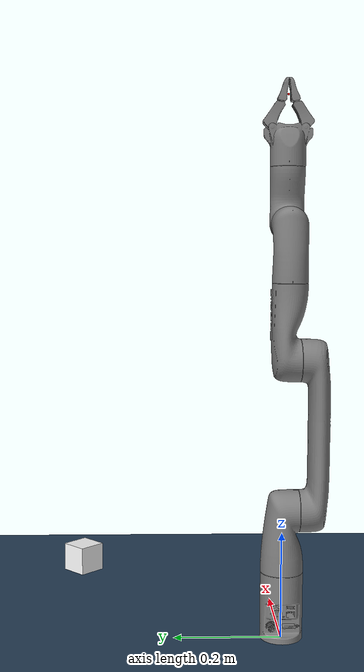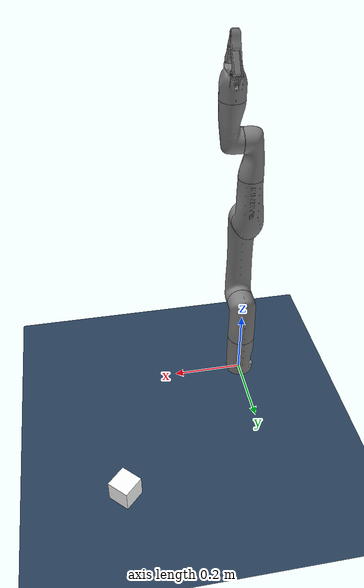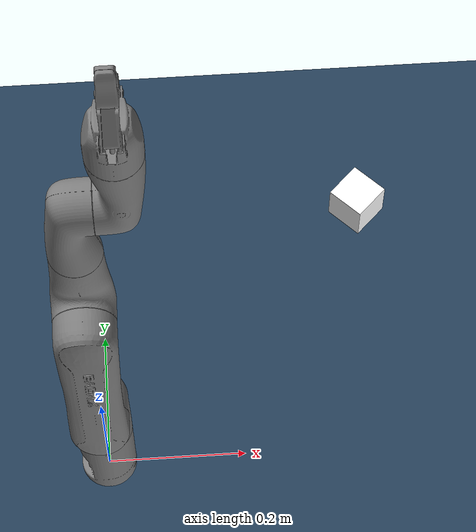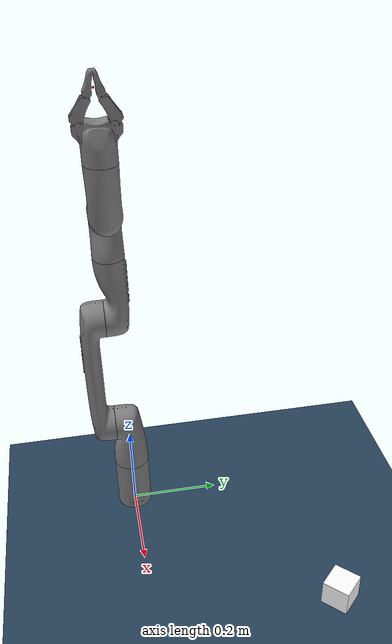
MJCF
<mujoco model="gen3_lite scene">
  <include file="kinova_gen3_lite.xml"/>

  <statistic center="0.3 0 0.45" extent="0.8" meansize="0.05"/>

  <visual>
    <headlight diffuse="0.6 0.6 0.6" ambient="0.1 0.1 0.1" specular="0 0 0"/>
    <rgba haze="0.15 0.25 0.35 1"/>
    <global azimuth="120" elevation="-20"/>
  </visual>

  <asset>
    <texture type="skybox" builtin="gradient" rgb1="0.3 0.5 0.7" rgb2="0 0 0" width="512" height="3072"/>
    <texture type="2d" name="groundplane" builtin="checker" mark="edge" rgb1="0.2 0.3 0.4" rgb2="0.1 0.2 0.3"
      markrgb="0.8 0.8 0.8" width="300" height="300"/>
    <material name="groundplane" texture="groundplane" texuniform="true" texrepeat="5 5" reflectance="0.2"/>
    <material name="metal" reflectance="0.7" texrepeat="1 1"/>
  </asset>

  <worldbody>
    <light pos="0 0 1.5" directional="true"/>
    <geom name="floor" size="0 0 0.05" type="plane" material="groundplane"/>
    <!-- Goal position only (no physics): visual cylinder, no collision -->
    <body name="target" pos="0.4 0.4 0.03" quat="0.9238795 0 0 0.3826834">
      <joint type="free" damping="1000"/>
      <geom name ="target" pos="0 0 0" type="box" size="0.03 0.03 0.03" solimp="0.998 0.998 0.001" solref="0.001 1" density="10000" friction="1.5 0.5 0.2" material="metal" group="1" condim="4"/>

    </body>
  </worldbody>
</mujoco>

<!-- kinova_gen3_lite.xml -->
<mujoco model="gen3_lite">

  <compiler angle="radian" meshdir="assets"/>

  <option integrator="implicitfast"/>

  <default>
    <default class="visual">
      <geom type="mesh" contype="0" conaffinity="0" group="2" rgba="0.75294 0.75294 0.75294 1"/>
    </default>
    <default class="collision">
      <geom type="mesh" group="3"/>
    </default>
    <default class="large_actuator">
      <position kp="800" kv="40" forcerange="-14 14"/>
    </default>
    <default class="small_actuator">
      <position kp="300" kv="20" forcerange="-7 7"/>
    </default>

      <!-- gripper actuator class -->
    <default class="gripper_actuator">
      <position kp="20" kv="2" forcerange="-50 50"/>
    </default>
    <site size="0.001" rgba="0.5 0.5 0.5 0.3" group="4"/>
  </default>

  <asset>
    <mesh name="base_link" content_type="model/stl" file="base_link.STL"/>
    <mesh name="shoulder_link" content_type="model/stl" file="shoulder_link.STL"/>
    <mesh name="arm_link" content_type="model/stl" file="arm_link.STL"/>
    <mesh name="forearm_link" content_type="model/stl" file="forearm_link.STL"/>
    <mesh name="lower_wrist_link" content_type="model/stl" file="lower_wrist_link.STL"/>
    <mesh name="upper_wrist_link" content_type="model/stl" file="upper_wrist_link.STL"/>
    <mesh name="gripper_base_link" content_type="model/stl" file="gripper_base_link.STL"/>
    <mesh name="right_finger_prox_link" content_type="model/stl" file="right_finger_prox_link.STL"/>
    <mesh name="right_finger_dist_link" content_type="model/stl" file="right_finger_dist_link.STL"/>
    <mesh name="left_finger_prox_link" content_type="model/stl" file="left_finger_prox_link.STL"/>
    <mesh name="left_finger_dist_link" content_type="model/stl" file="left_finger_dist_link.STL"/>
  </asset>

  <worldbody>
    <body name="base_link" pos="0 0 0">
      <geom type="mesh" mesh="base_link"/>
      <body name="SHOULDER" pos="0 0 0.12825">
        <inertial pos="2.477e-05 0.0221353 0.0993769" quat="0.972429 0.233194 -0.000430944 0.00108761" mass="0.959744" diaginertia="0.00165947 0.00158128 0.000717195"/>
        <joint name="J0" pos="0 0 0" axis="0 0 1" range="-2.76 2.76" />
        <geom type="mesh" mesh="shoulder_link"/>
        <body name="ARM" pos="0 -0.03 0.115" quat="0.707105 0.707108 0 0">
          <inertial pos="0.029983 0.211548 0.0453031" quat="0.534676 0.467794 -0.46336 0.529706" mass="1.17756" diaginertia="0.0115237 0.0114928 0.000839712"/>
          <joint name="J1" pos="0 0 0" axis="0 0 1" range="-2.76 2.76" />
          <geom type="mesh" mesh="arm_link"/>
          <body name="FOREARM" pos="0 0.28 0" quat="-3.67321e-06 -1 0 0">
            <inertial pos="0.0301559 0.0950221 0.0073555" quat="0.523543 0.49139 -0.473675 0.50997" mass="0.597677" diaginertia="0.00169754 0.00163253 0.000291376"/>
            <joint name="J2" pos="0 0 0" axis="0 0 1" range="-2.76 2.76" />
            <geom type="mesh" mesh="forearm_link"/>
            <body name="LOWER_WRIST" pos="0 -0.14 0.02" quat="0.707105 0.707108 0 0">
              <inertial pos="0.00575149 0.0100044 0.0871921" quat="0.700403 -0.13124 -0.134345 0.688595" mass="0.526934" diaginertia="0.000785199 0.000756398 0.000275722"/>
              <joint name="J3" pos="0 0 0" axis="0 0 1" range="-2.67 2.67" />
              <geom type="mesh" mesh="lower_wrist_link"/>
              <body name="UPPER_WRIST" pos="0.0285 0 0.105" quat="0.707105 0 0.707108 0">
                <inertial pos="0.0805652 0.00980409 0.018728" quat="0.00431726 0.708285 -4.18922e-06 0.705913" mass="0.580973" diaginertia="0.00108466 0.00106374 0.000212638"/>
                <joint name="J4" pos="0 0 0" axis="0 0 1" range="-2.67 2.67" />
                <geom type="mesh" mesh="upper_wrist_link"/>
                <body name="END_EFFECTOR" pos="-0.105 0 0.0285" quat="0.707105 0 -0.707108 0">
                  <joint name="J5" pos="0 0 0" axis="0 0 1" range="-2.67 2.67" />
                  <geom type="mesh" mesh="gripper_base_link"/>
                  <site name="END_EFFECTOR_SITE" pos="0 0 0.13" quat="0.7071 0 0 0.7071" size="0.002" rgba="1 0 0 1" group="0"/>
                  <body name="RIGHT_FINGER_PROX" pos="0 -0.030501 0.070003" quat="0.707105 0 0.707108 0">
                    <inertial pos="0.020257 0.0063483 6.991e-05" quat="0.598941 0.598941 0.375858 0.375858" mass="0.018385" diaginertia="5.25068e-06 4.77e-06 1.59932e-06"/>
                    <joint name="RIGHT_BOTTOM" pos="0 0 0" axis="0 0 1" range="-0.09 0.96" />
                    <geom name="RIGHT_FINGER_PROX_GEOM" type="mesh" mesh="right_finger_prox_link"/>
                    <body name="RIGHT_FINGER_DIST" pos="-0.045636 0.020423 0">
                      <inertial pos="0.018488 0.0011091 0" quat="0.557345 0.557345 0.435162 0.435162" mass="0.010748" diaginertia="1.91e-06 1.61e-06 5.5e-07"/>
                      <joint name="RIGHT_TIP" pos="0 0 0" axis="0 0 1" range="-1.03 0.21" />
                      <geom name="RIGHT_FINGER_DIST_GEOM" type="mesh" mesh="right_finger_dist_link" friction="0.7 0.15 0.2"/>
                    </body>
                  </body>
                  <body name="LEFT_FINGER_PROX" pos="0 0.0305 0.070003" quat="0.707105 0 0.707108 0">
                    <inertial pos="0.020257 0.0063483 6.99e-05" quat="0.598941 0.598941 0.375858 0.375858" mass="0.018385" diaginertia="5.25068e-06 4.77e-06 1.59932e-06"/>
                    <joint name="LEFT_BOTTOM" pos="0 0 0" axis="0 0 1" range="-0.96 0.09" />
                    <geom name="LEFT_FINGER_PROX_GEOM" type="mesh" mesh="left_finger_prox_link"/>
                    <body name="LEFT_FINGER_DIST" pos="-0.045636 -0.020423 6.9901e-05">
                      <inertial pos="-0.018488 0.0011091 0" quat="0.557345 0.557345 0.435162 0.435162" mass="0.010748" diaginertia="1.91e-06 1.61e-06 5.5e-07"/>
                      <joint name="LEFT_TIP" pos="0 0 0" axis="0 0 1" range="-0.21 1.03" />
                      <geom name="LEFT_FINGER_DIST_GEOM" type="mesh" mesh="left_finger_dist_link" friction="0.7 0.15 0.2"/>
                    </body>
                  </body>
                </body>
              </body>
            </body>
          </body>
        </body>
      </body>
    </body>
  </worldbody>

  <actuator>
    <!-- Arm joints (J0-J5) -->
    <position class="large_actuator" name="J0" joint="J0" ctrlrange="-2.76 2.76"/>
    <position class="large_actuator" name="J1" joint="J1" ctrlrange="-2.76 2.76"/>
    <position class="large_actuator" name="J2" joint="J2" ctrlrange="-2.76 2.76"/>
    <position class="small_actuator" name="J3" joint="J3" ctrlrange="-2.67 2.67"/>
    <position class="small_actuator" name="J4" joint="J4" ctrlrange="-2.67 2.67"/>
    <position class="small_actuator" name="J5" joint="J5" ctrlrange="-2.67 2.67"/>

    <!-- Gripper joints -->
    <position class="gripper_actuator" name="RIGHT_BOTTOM" joint="RIGHT_BOTTOM" ctrlrange="-0.09 0.96"/>
    <position class="gripper_actuator" name="RIGHT_TIP" joint="RIGHT_TIP" ctrlrange="-1.03 0.21"/>
    <position class="gripper_actuator" name="LEFT_BOTTOM" joint="LEFT_BOTTOM" ctrlrange="-0.96 0.09"/>
    <position class="gripper_actuator" name="LEFT_TIP" joint="LEFT_TIP" ctrlrange="-0.21 1.03"/>
  </actuator>

</mujoco>
